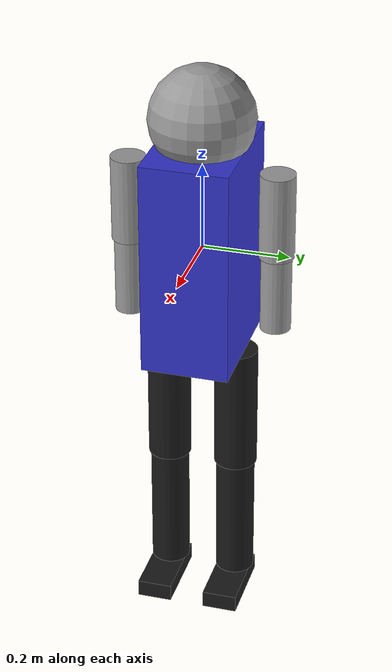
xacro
<?xml version="1.0"?>
<robot name="humanoid" xmlns:xacro="http://www.ros.org/wiki/xacro">

  <material name="blue"><color rgba="0.2 0.2 0.8 1"/></material>
  <material name="grey"><color rgba="0.6 0.6 0.6 1"/></material>
  <material name="dark"><color rgba="0.1 0.1 0.1 1"/></material>

  <link name="base_link">
    <visual>
      <geometry><box size="0.3 0.2 0.5"/></geometry>
      <material name="blue"/>
    </visual>
    <collision><geometry><box size="0.3 0.2 0.5"/></geometry></collision>
    <inertial><mass value="5"/><inertia ixx="0.1" ixy="0" ixz="0" iyy="0.1" iyz="0" izz="0.1"/></inertial>
  </link>

  <link name="head">
    <visual><geometry><sphere radius="0.12"/></geometry><material name="grey"/></visual>
    <collision><geometry><sphere radius="0.12"/></geometry></collision>
    <inertial><mass value="1"/><inertia ixx="0.01" ixy="0" ixz="0" iyy="0.01" iyz="0" izz="0.01"/></inertial>
  </link>

  <joint name="neck_joint" type="revolute">
    <parent link="base_link"/>
    <child link="head"/>
    <origin xyz="0 0 0.31" rpy="0 0 0"/>
    <axis xyz="0 0 1"/>
    <limit lower="-1.57" upper="1.57" effort="10" velocity="1"/>
  </joint>

  <xacro:macro name="arm" params="side reflect">
    <link name="${side}_upper_arm">
      <visual><origin xyz="0 0 -0.1"/><geometry><cylinder radius="0.04" length="0.2"/></geometry><material name="grey"/></visual>
      <collision><origin xyz="0 0 -0.1"/><geometry><cylinder radius="0.04" length="0.2"/></geometry></collision>
      <inertial><mass value="0.5"/><inertia ixx="0.005" ixy="0" ixz="0" iyy="0.005" iyz="0" izz="0.005"/></inertial>
    </link>
    <joint name="${side}_shoulder_joint" type="revolute">
      <parent link="base_link"/>
      <child link="${side}_upper_arm"/>
      <origin xyz="0 ${reflect * 0.17} 0.2" rpy="0 0 0"/>
      <axis xyz="1 0 0"/>
      <limit lower="-3.14" upper="3.14" effort="10" velocity="1"/>
    </joint>

    <link name="${side}_lower_arm">
      <visual><origin xyz="0 0 -0.09"/><geometry><cylinder radius="0.035" length="0.18"/></geometry><material name="grey"/></visual>
      <collision><origin xyz="0 0 -0.09"/><geometry><cylinder radius="0.035" length="0.18"/></geometry></collision>
      <inertial><mass value="0.4"/><inertia ixx="0.003" ixy="0" ixz="0" iyy="0.003" iyz="0" izz="0.003"/></inertial>
    </link>
    <joint name="${side}_elbow_joint" type="revolute">
      <parent link="${side}_upper_arm"/>
      <child link="${side}_lower_arm"/>
      <origin xyz="0 0 -0.2" rpy="0 0 0"/>
      <axis xyz="1 0 0"/>
      <limit lower="0" upper="2.5" effort="10" velocity="1"/>
    </joint>
  </xacro:macro>

  <xacro:arm side="left" reflect="1"/>
  <xacro:arm side="right" reflect="-1"/>

  <xacro:macro name="leg" params="side reflect">
    <link name="${side}_upper_leg">
      <visual><origin xyz="0 0 -0.15"/><geometry><cylinder radius="0.05" length="0.3"/></geometry><material name="dark"/></visual>
      <collision><origin xyz="0 0 -0.15"/><geometry><cylinder radius="0.05" length="0.3"/></geometry></collision>
      <inertial><mass value="1"/><inertia ixx="0.01" ixy="0" ixz="0" iyy="0.01" iyz="0" izz="0.01"/></inertial>
    </link>
    <joint name="${side}_hip_joint" type="revolute">
      <parent link="base_link"/>
      <child link="${side}_upper_leg"/>
      <origin xyz="0 ${reflect * 0.08} -0.25" rpy="0 0 0"/>
      <axis xyz="1 0 0"/>
      <limit lower="-1.57" upper="1.57" effort="20" velocity="1"/>
    </joint>

    <link name="${side}_lower_leg">
      <visual><origin xyz="0 0 -0.15"/><geometry><cylinder radius="0.045" length="0.3"/></geometry><material name="dark"/></visual>
      <collision><origin xyz="0 0 -0.15"/><geometry><cylinder radius="0.045" length="0.3"/></geometry></collision>
      <inertial><mass value="0.8"/><inertia ixx="0.008" ixy="0" ixz="0" iyy="0.008" iyz="0" izz="0.008"/></inertial>
    </link>
    <joint name="${side}_knee_joint" type="revolute">
      <parent link="${side}_upper_leg"/>
      <child link="${side}_lower_leg"/>
      <origin xyz="0 0 -0.3" rpy="0 0 0"/>
      <axis xyz="1 0 0"/>
      <limit lower="0" upper="2.3" effort="20" velocity="1"/>
    </joint>

    <link name="${side}_foot">
      <visual><origin xyz="0.05 0 -0.02"/><geometry><box size="0.18 0.08 0.04"/></geometry><material name="dark"/></visual>
      <collision><origin xyz="0.05 0 -0.02"/><geometry><box size="0.18 0.08 0.04"/></geometry></collision>
      <inertial><mass value="0.2"/><inertia ixx="0.001" ixy="0" ixz="0" iyy="0.001" iyz="0" izz="0.001"/></inertial>
    </link>
    <joint name="${side}_ankle_joint" type="fixed">
      <parent link="${side}_lower_leg"/>
      <child link="${side}_foot"/>
      <origin xyz="0 0 -0.3" rpy="0 0 0"/>
    </joint>
  </xacro:macro>

  <xacro:leg side="left" reflect="1"/>
  <xacro:leg side="right" reflect="-1"/>

</robot>
